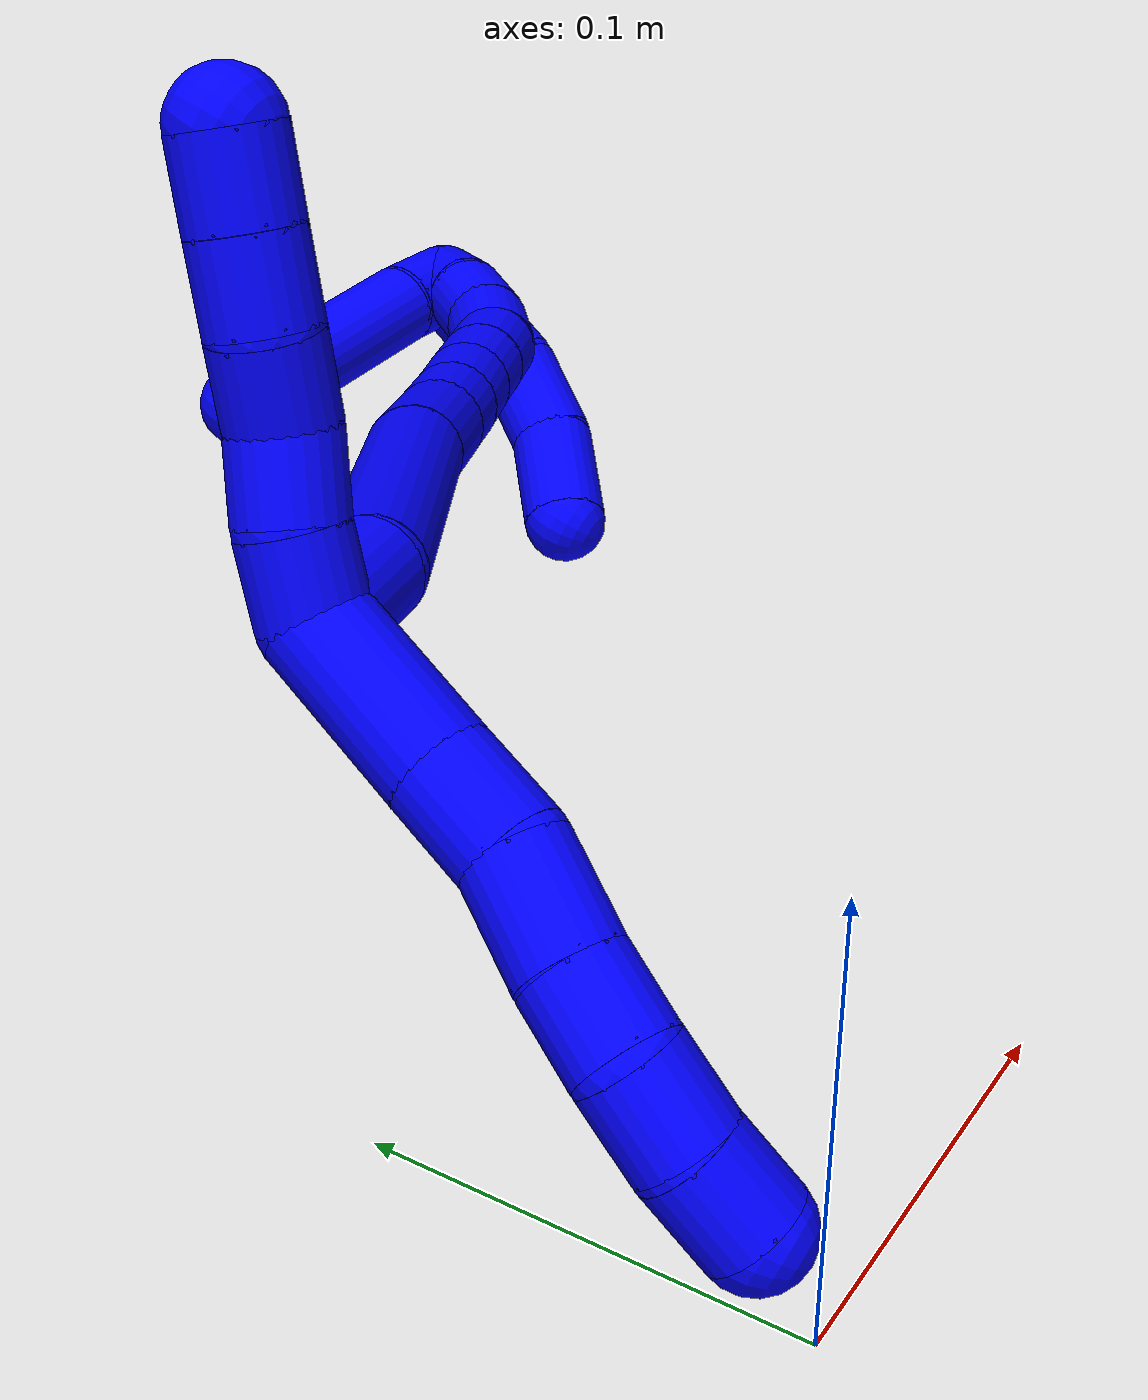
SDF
<sdf version="1.7">
 <world name="default">
  <model name="photoneo_s_sensor">
   <static>1</static>
   <pose>0 0 2 1.57079 1.57079 3.14159</pose>
   <link name="link">
    <inertial><mass>0.1</mass></inertial>
    <sensor name="sensor" type="depth">
     <update_rate>30</update_rate>
     <camera>
      <horizontal_fov>1.22</horizontal_fov>
      <image><width>1920</width><height>1200</height><format>B8G8R8</format></image>
      <clip><near>0.1</near><far>4</far></clip>
      <depth_camera><output>points</output></depth_camera>
     </camera>
     <plugin name="camera_plugin" filename="libgazebo_ros_depth_camera.so">
      <baseline>0.2</baseline>
      <alwaysOn>1</alwaysOn>
      <updateRate>0.0</updateRate>
      <cameraName>camera_ir</cameraName>
      <imageTopicName>/camera/color/image_raw</imageTopicName>
      <cameraInfoTopicName>/camera/color/camera_info</cameraInfoTopicName>
      <depthImageTopicName>/camera/depth/image_raw</depthImageTopicName>
      <depthImageCameraInfoTopicName>/camera/depth/camera_info</depthImageCameraInfoTopicName>
      <pointCloudTopicName>/camera/depth/points</pointCloudTopicName>
      <frameName>fr_optical</frameName>
      <pointCloudCutoff>0.1</pointCloudCutoff>
      <pointCloudCutoffMax>2.0</pointCloudCutoffMax>
      <distortionK1>0</distortionK1>
      <distortionK2>0</distortionK2>
      <distortionK3>0</distortionK3>
      <distortionT1>0</distortionT1>
      <distortionT2>0</distortionT2>
      <CxPrime>0</CxPrime>
      <Cx>0</Cx>
      <Cy>0</Cy>
      <focalLength>0</focalLength>
      <hackBaseline>0</hackBaseline>
     </plugin>
    </sensor>
   </link>
  </model>
  <model name="bin">
   <static>1</static>
   <link name="bottom">
    <collision name="collision-bottom">
     <pose>0 0 -0.01 0 -0 0</pose>
     <geometry><box><size>0.8 0.6 0.02</size></box></geometry>
     <surface>
      <friction><ode><mu>100</mu><mu2>100</mu2></ode></friction>
      <contact><collide_bitmask>65535</collide_bitmask></contact>
     </surface>
    </collision>
   </link>
   <link name="west_wall">
    <collision name="collision-west_wall">
     <pose>-0.41 0 0.1 0 -0 0</pose>
     <geometry><box><size>0.02 0.6 0.2</size></box></geometry>
     <surface>
      <friction><ode><mu>100</mu><mu2>100</mu2></ode></friction>
      <contact><collide_bitmask>65535</collide_bitmask></contact>
     </surface>
    </collision>
   </link>
   <link name="east_wall">
    <collision name="collision-east_wall">
     <pose>0.41 0 0.1 0 -0 0</pose>
     <geometry><box><size>0.02 0.6 0.2</size></box></geometry>
     <surface>
      <friction><ode><mu>100</mu><mu2>100</mu2></ode></friction>
      <contact><collide_bitmask>65535</collide_bitmask></contact>
     </surface>
    </collision>
   </link>
   <link name="south_wall">
    <collision name="collision-south_wall">
     <pose>0 -0.31 0.1 0 -0 0</pose>
     <geometry><box><size>0.8 0.02 0.2</size></box></geometry>
     <surface>
      <friction><ode><mu>100</mu><mu2>100</mu2></ode></friction>
      <contact><collide_bitmask>65535</collide_bitmask></contact>
     </surface>
    </collision>
   </link>
   <link name="north_wall">
    <collision name="collision-north_wall">
     <pose>0 0.31 0.1 0 -0 0</pose>
     <geometry><box><size>0.8 0.02 0.2</size></box></geometry>
     <surface>
      <friction><ode><mu>100</mu><mu2>100</mu2></ode></friction>
      <contact><collide_bitmask>65535</collide_bitmask></contact>
     </surface>
    </collision>
   </link>
  </model>
  <model name="1">
   <static>0</static>
   <link name="1">
    <collision name="collision-cylinder-e_1_2_8">
     <pose>0.004979 0.003196 0.01945 -0.16285 0.247431 -0.020295</pose>
     <geometry><cylinder><radius>0.0125</radius><length>0.04066</length></cylinder></geometry>
     <surface>
      <friction><ode><mu>1.16</mu><mu2>1.16</mu2><slip1>0</slip1><slip2>0</slip2></ode></friction>
      <contact><ode><kp>1e+06</kp><kd>1</kd><max_vel>0</max_vel><min_depth>0.001</min_depth></ode></contact>
     </surface>
    </collision>
    <visual name="visual-cylinder-e_1_2_8">
     <pose>0.004979 0.003196 0.01945 -0.16285 0.247431 -0.020295</pose>
     <geometry><cylinder><radius>0.0125</radius><length>0.04066</length></cylinder></geometry>
     <material><ambient>0 0 1 1</ambient></material>
    </visual>
    <collision name="collision-cylinder-e_2_8_9">
     <pose>0.01349 0.007165 0.050027 -0.069429 0.306677 -0.010735</pose>
     <geometry><cylinder><radius>0.0125</radius><length>0.023399</length></cylinder></geometry>
     <surface>
      <friction><ode><mu>1.16</mu><mu2>1.16</mu2><slip1>0</slip1><slip2>0</slip2></ode></friction>
      <contact><ode><kp>1e+06</kp><kd>1</kd><max_vel>0</max_vel><min_depth>0.001</min_depth></ode></contact>
     </surface>
    </collision>
    <visual name="visual-cylinder-e_2_8_9">
     <pose>0.01349 0.007165 0.050027 -0.069429 0.306677 -0.010735</pose>
     <geometry><cylinder><radius>0.0125</radius><length>0.023399</length></cylinder></geometry>
     <material><ambient>0 0 1 1</ambient></material>
    </visual>
    <collision name="collision-cylinder-e_3_9_10">
     <pose>0.022689 0.01115 0.072102 -0.285325 0.460967 -0.067385</pose>
     <geometry><cylinder><radius>0.0125</radius><length>0.025478</length></cylinder></geometry>
     <surface>
      <friction><ode><mu>1.16</mu><mu2>1.16</mu2><slip1>0</slip1><slip2>0</slip2></ode></friction>
      <contact><ode><kp>1e+06</kp><kd>1</kd><max_vel>0</max_vel><min_depth>0.001</min_depth></ode></contact>
     </surface>
    </collision>
    <visual name="visual-cylinder-e_3_9_10">
     <pose>0.022689 0.01115 0.072102 -0.285325 0.460967 -0.067385</pose>
     <geometry><cylinder><radius>0.0125</radius><length>0.025478</length></cylinder></geometry>
     <material><ambient>0 0 1 1</ambient></material>
    </visual>
    <collision name="collision-cylinder-e_4_10_11">
     <pose>0.032164 0.016566 0.092118 -0.238427 0.387477 -0.046993</pose>
     <geometry><cylinder><radius>0.0125</radius><length>0.020159</length></cylinder></geometry>
     <surface>
      <friction><ode><mu>1.16</mu><mu2>1.16</mu2><slip1>0</slip1><slip2>0</slip2></ode></friction>
      <contact><ode><kp>1e+06</kp><kd>1</kd><max_vel>0</max_vel><min_depth>0.001</min_depth></ode></contact>
     </surface>
    </collision>
    <visual name="visual-cylinder-e_4_10_11">
     <pose>0.032164 0.016566 0.092118 -0.238427 0.387477 -0.046993</pose>
     <geometry><cylinder><radius>0.0125</radius><length>0.020159</length></cylinder></geometry>
     <material><ambient>0 0 1 1</ambient></material>
    </visual>
    <collision name="collision-cylinder-e_5_11_12">
     <pose>0.037407 0.023148 0.110127 -0.455324 0.143132 -0.033214</pose>
     <geometry><cylinder><radius>0.0125</radius><length>0.020116</length></cylinder></geometry>
     <surface>
      <friction><ode><mu>1.16</mu><mu2>1.16</mu2><slip1>0</slip1><slip2>0</slip2></ode></friction>
      <contact><ode><kp>1e+06</kp><kd>1</kd><max_vel>0</max_vel><min_depth>0.001</min_depth></ode></contact>
     </surface>
    </collision>
    <visual name="visual-cylinder-e_5_11_12">
     <pose>0.037407 0.023148 0.110127 -0.455324 0.143132 -0.033214</pose>
     <geometry><cylinder><radius>0.0125</radius><length>0.020116</length></cylinder></geometry>
     <material><ambient>0 0 1 1</ambient></material>
    </visual>
    <collision name="collision-cylinder-e_6_12_6">
     <pose>0.038735 0.031951 0.12814 -0.453885 -0.010524 0.00243</pose>
     <geometry><cylinder><radius>0.0125</radius><length>0.020188</length></cylinder></geometry>
     <surface>
      <friction><ode><mu>1.16</mu><mu2>1.16</mu2><slip1>0</slip1><slip2>0</slip2></ode></friction>
      <contact><ode><kp>1e+06</kp><kd>1</kd><max_vel>0</max_vel><min_depth>0.001</min_depth></ode></contact>
     </surface>
    </collision>
    <visual name="visual-cylinder-e_6_12_6">
     <pose>0.038735 0.031951 0.12814 -0.453885 -0.010524 0.00243</pose>
     <geometry><cylinder><radius>0.0125</radius><length>0.020188</length></cylinder></geometry>
     <material><ambient>0 0 1 1</ambient></material>
    </visual>
    <collision name="collision-cylinder-e_1_2_13">
     <pose>-0.001993 -0.007693 -0.00607 2.23887 -0.200604 -0.409418</pose>
     <geometry><cylinder><radius>0.0125</radius><length>0.02</length></cylinder></geometry>
     <surface>
      <friction><ode><mu>1.16</mu><mu2>1.16</mu2><slip1>0</slip1><slip2>0</slip2></ode></friction>
      <contact><ode><kp>1e+06</kp><kd>1</kd><max_vel>0</max_vel><min_depth>0.001</min_depth></ode></contact>
     </surface>
    </collision>
    <visual name="visual-cylinder-e_1_2_13">
     <pose>-0.001993 -0.007693 -0.00607 2.23887 -0.200604 -0.409418</pose>
     <geometry><cylinder><radius>0.0125</radius><length>0.02</length></cylinder></geometry>
     <material><ambient>0 0 1 1</ambient></material>
    </visual>
    <collision name="collision-cylinder-e_2_13_14">
     <pose>-0.007785 -0.022881 -0.017561 2.19682 -0.389731 -0.737218</pose>
     <geometry><cylinder><radius>0.0125</radius><length>0.02</length></cylinder></geometry>
     <surface>
      <friction><ode><mu>1.16</mu><mu2>1.16</mu2><slip1>0</slip1><slip2>0</slip2></ode></friction>
      <contact><ode><kp>1e+06</kp><kd>1</kd><max_vel>0</max_vel><min_depth>0.001</min_depth></ode></contact>
     </surface>
    </collision>
    <visual name="visual-cylinder-e_2_13_14">
     <pose>-0.007785 -0.022881 -0.017561 2.19682 -0.389731 -0.737218</pose>
     <geometry><cylinder><radius>0.0125</radius><length>0.02</length></cylinder></geometry>
     <material><ambient>0 0 1 1</ambient></material>
    </visual>
    <collision name="collision-cylinder-e_3_14_15">
     <pose>-0.012265 -0.039134 -0.027762 2.07054 -0.068178 -0.114818</pose>
     <geometry><cylinder><radius>0.0125</radius><length>0.02</length></cylinder></geometry>
     <surface>
      <friction><ode><mu>1.16</mu><mu2>1.16</mu2><slip1>0</slip1><slip2>0</slip2></ode></friction>
      <contact><ode><kp>1e+06</kp><kd>1</kd><max_vel>0</max_vel><min_depth>0.001</min_depth></ode></contact>
     </surface>
    </collision>
    <visual name="visual-cylinder-e_3_14_15">
     <pose>-0.012265 -0.039134 -0.027762 2.07054 -0.068178 -0.114818</pose>
     <geometry><cylinder><radius>0.0125</radius><length>0.02</length></cylinder></geometry>
     <material><ambient>0 0 1 1</ambient></material>
    </visual>
    <collision name="collision-cylinder-e_4_15_16">
     <pose>-0.01492 -0.055975 -0.038088 2.17204 -0.198694 -0.374071</pose>
     <geometry><cylinder><radius>0.0125</radius><length>0.02</length></cylinder></geometry>
     <surface>
      <friction><ode><mu>1.16</mu><mu2>1.16</mu2><slip1>0</slip1><slip2>0</slip2></ode></friction>
      <contact><ode><kp>1e+06</kp><kd>1</kd><max_vel>0</max_vel><min_depth>0.001</min_depth></ode></contact>
     </surface>
    </collision>
    <visual name="visual-cylinder-e_4_15_16">
     <pose>-0.01492 -0.055975 -0.038088 2.17204 -0.198694 -0.374071</pose>
     <geometry><cylinder><radius>0.0125</radius><length>0.02</length></cylinder></geometry>
     <material><ambient>0 0 1 1</ambient></material>
    </visual>
    <collision name="collision-cylinder-e_5_16_5">
     <pose>-0.018975 -0.072118 -0.049176 2.17325 -0.20963 -0.394846</pose>
     <geometry><cylinder><radius>0.0125</radius><length>0.02</length></cylinder></geometry>
     <surface>
      <friction><ode><mu>1.16</mu><mu2>1.16</mu2><slip1>0</slip1><slip2>0</slip2></ode></friction>
      <contact><ode><kp>1e+06</kp><kd>1</kd><max_vel>0</max_vel><min_depth>0.001</min_depth></ode></contact>
     </surface>
    </collision>
    <visual name="visual-cylinder-e_5_16_5">
     <pose>-0.018975 -0.072118 -0.049176 2.17325 -0.20963 -0.394846</pose>
     <geometry><cylinder><radius>0.0125</radius><length>0.02</length></cylinder></geometry>
     <material><ambient>0 0 1 1</ambient></material>
    </visual>
    <collision name="collision-cylinder-e_1_2_17">
     <pose>-0.014134 0.002833 -0.001532 -2.0665 -1.34678 1.85819</pose>
     <geometry><cylinder><radius>0.0125</radius><length>0.028992</length></cylinder></geometry>
     <surface>
      <friction><ode><mu>1.16</mu><mu2>1.16</mu2><slip1>0</slip1><slip2>0</slip2></ode></friction>
      <contact><ode><kp>1e+06</kp><kd>1</kd><max_vel>0</max_vel><min_depth>0.001</min_depth></ode></contact>
     </surface>
    </collision>
    <visual name="visual-cylinder-e_1_2_17">
     <pose>-0.014134 0.002833 -0.001532 -2.0665 -1.34678 1.85819</pose>
     <geometry><cylinder><radius>0.0125</radius><length>0.028992</length></cylinder></geometry>
     <material><ambient>0 0 1 1</ambient></material>
    </visual>
    <collision name="collision-cylinder-e_2_17_18">
     <pose>-0.067644 0.021349 -0.01835 -2.34336 -1.06322 1.89729</pose>
     <geometry><cylinder><radius>0.0125</radius><length>0.090114</length></cylinder></geometry>
     <surface>
      <friction><ode><mu>1.16</mu><mu2>1.16</mu2><slip1>0</slip1><slip2>0</slip2></ode></friction>
      <contact><ode><kp>1e+06</kp><kd>1</kd><max_vel>0</max_vel><min_depth>0.001</min_depth></ode></contact>
     </surface>
    </collision>
    <visual name="visual-cylinder-e_2_17_18">
     <pose>-0.067644 0.021349 -0.01835 -2.34336 -1.06322 1.89729</pose>
     <geometry><cylinder><radius>0.0125</radius><length>0.090114</length></cylinder></geometry>
     <material><ambient>0 0 1 1</ambient></material>
    </visual>
    <collision name="collision-cylinder-e_3_18_19">
     <pose>-0.123533 0.044382 -0.038314 -2.13767 -1.0853 1.66481</pose>
     <geometry><cylinder><radius>0.0125</radius><length>0.03734</length></cylinder></geometry>
     <surface>
      <friction><ode><mu>1.16</mu><mu2>1.16</mu2><slip1>0</slip1><slip2>0</slip2></ode></friction>
      <contact><ode><kp>1e+06</kp><kd>1</kd><max_vel>0</max_vel><min_depth>0.001</min_depth></ode></contact>
     </surface>
    </collision>
    <visual name="visual-cylinder-e_3_18_19">
     <pose>-0.123533 0.044382 -0.038314 -2.13767 -1.0853 1.66481</pose>
     <geometry><cylinder><radius>0.0125</radius><length>0.03734</length></cylinder></geometry>
     <material><ambient>0 0 1 1</ambient></material>
    </visual>
    <collision name="collision-cylinder-e_4_19_20">
     <pose>-0.150001 0.055262 -0.045617 -2.2101 -1.15476 1.82726</pose>
     <geometry><cylinder><radius>0.0125</radius><length>0.021768</length></cylinder></geometry>
     <surface>
      <friction><ode><mu>1.16</mu><mu2>1.16</mu2><slip1>0</slip1><slip2>0</slip2></ode></friction>
      <contact><ode><kp>1e+06</kp><kd>1</kd><max_vel>0</max_vel><min_depth>0.001</min_depth></ode></contact>
     </surface>
    </collision>
    <visual name="visual-cylinder-e_4_19_20">
     <pose>-0.150001 0.055262 -0.045617 -2.2101 -1.15476 1.82726</pose>
     <geometry><cylinder><radius>0.0125</radius><length>0.021768</length></cylinder></geometry>
     <material><ambient>0 0 1 1</ambient></material>
    </visual>
    <collision name="collision-cylinder-e_5_20_21">
     <pose>-0.169843 0.061904 -0.051015 -2.29868 -1.17173 1.95326</pose>
     <geometry><cylinder><radius>0.0125</radius><length>0.021457</length></cylinder></geometry>
     <surface>
      <friction><ode><mu>1.16</mu><mu2>1.16</mu2><slip1>0</slip1><slip2>0</slip2></ode></friction>
      <contact><ode><kp>1e+06</kp><kd>1</kd><max_vel>0</max_vel><min_depth>0.001</min_depth></ode></contact>
     </surface>
    </collision>
    <visual name="visual-cylinder-e_5_20_21">
     <pose>-0.169843 0.061904 -0.051015 -2.29868 -1.17173 1.95326</pose>
     <geometry><cylinder><radius>0.0125</radius><length>0.021457</length></cylinder></geometry>
     <material><ambient>0 0 1 1</ambient></material>
    </visual>
    <collision name="collision-cylinder-e_6_21_22">
     <pose>-0.189166 0.067646 -0.056231 -2.31932 -1.20744 2.01405</pose>
     <geometry><cylinder><radius>0.0125</radius><length>0.020195</length></cylinder></geometry>
     <surface>
      <friction><ode><mu>1.16</mu><mu2>1.16</mu2><slip1>0</slip1><slip2>0</slip2></ode></friction>
      <contact><ode><kp>1e+06</kp><kd>1</kd><max_vel>0</max_vel><min_depth>0.001</min_depth></ode></contact>
     </surface>
    </collision>
    <visual name="visual-cylinder-e_6_21_22">
     <pose>-0.189166 0.067646 -0.056231 -2.31932 -1.20744 2.01405</pose>
     <geometry><cylinder><radius>0.0125</radius><length>0.020195</length></cylinder></geometry>
     <material><ambient>0 0 1 1</ambient></material>
    </visual>
    <collision name="collision-cylinder-e_7_22_23">
     <pose>-0.207927 0.073012 -0.061183 -2.31284 -1.19173 1.99073</pose>
     <geometry><cylinder><radius>0.0125</radius><length>0.02007</length></cylinder></geometry>
     <surface>
      <friction><ode><mu>1.16</mu><mu2>1.16</mu2><slip1>0</slip1><slip2>0</slip2></ode></friction>
      <contact><ode><kp>1e+06</kp><kd>1</kd><max_vel>0</max_vel><min_depth>0.001</min_depth></ode></contact>
     </surface>
    </collision>
    <visual name="visual-cylinder-e_7_22_23">
     <pose>-0.207927 0.073012 -0.061183 -2.31284 -1.19173 1.99073</pose>
     <geometry><cylinder><radius>0.0125</radius><length>0.02007</length></cylinder></geometry>
     <material><ambient>0 0 1 1</ambient></material>
    </visual>
    <collision name="collision-cylinder-e_8_23_24">
     <pose>-0.225297 0.078163 -0.06915 -2.72527 -0.932679 2.347</pose>
     <geometry><cylinder><radius>0.0125</radius><length>0.020037</length></cylinder></geometry>
     <surface>
      <friction><ode><mu>1.16</mu><mu2>1.16</mu2><slip1>0</slip1><slip2>0</slip2></ode></friction>
      <contact><ode><kp>1e+06</kp><kd>1</kd><max_vel>0</max_vel><min_depth>0.001</min_depth></ode></contact>
     </surface>
    </collision>
    <visual name="visual-cylinder-e_8_23_24">
     <pose>-0.225297 0.078163 -0.06915 -2.72527 -0.932679 2.347</pose>
     <geometry><cylinder><radius>0.0125</radius><length>0.020037</length></cylinder></geometry>
     <material><ambient>0 0 1 1</ambient></material>
    </visual>
    <collision name="collision-cylinder-e_9_24_25">
     <pose>-0.239894 0.08301 -0.081774 -2.81418 -0.71336 2.30705</pose>
     <geometry><cylinder><radius>0.0125</radius><length>0.020016</length></cylinder></geometry>
     <surface>
      <friction><ode><mu>1.16</mu><mu2>1.16</mu2><slip1>0</slip1><slip2>0</slip2></ode></friction>
      <contact><ode><kp>1e+06</kp><kd>1</kd><max_vel>0</max_vel><min_depth>0.001</min_depth></ode></contact>
     </surface>
    </collision>
    <visual name="visual-cylinder-e_9_24_25">
     <pose>-0.239894 0.08301 -0.081774 -2.81418 -0.71336 2.30705</pose>
     <geometry><cylinder><radius>0.0125</radius><length>0.020016</length></cylinder></geometry>
     <material><ambient>0 0 1 1</ambient></material>
    </visual>
    <collision name="collision-cylinder-e_10_25_1">
     <pose>-0.252439 0.089606 -0.095782 -2.59508 -0.642686 1.742</pose>
     <geometry><cylinder><radius>0.0125</radius><length>0.02001</length></cylinder></geometry>
     <surface>
      <friction><ode><mu>1.16</mu><mu2>1.16</mu2><slip1>0</slip1><slip2>0</slip2></ode></friction>
      <contact><ode><kp>1e+06</kp><kd>1</kd><max_vel>0</max_vel><min_depth>0.001</min_depth></ode></contact>
     </surface>
    </collision>
    <visual name="visual-cylinder-e_10_25_1">
     <pose>-0.252439 0.089606 -0.095782 -2.59508 -0.642686 1.742</pose>
     <geometry><cylinder><radius>0.0125</radius><length>0.02001</length></cylinder></geometry>
     <material><ambient>0 0 1 1</ambient></material>
    </visual>
    <collision name="collision-cylinder-e_1_1_26">
     <pose>-0.252295 0.096469 -0.083881 -0.143091 0.313564 -0.022657</pose>
     <geometry><cylinder><radius>0.0125</radius><length>0.039816</length></cylinder></geometry>
     <surface>
      <friction><ode><mu>1.16</mu><mu2>1.16</mu2><slip1>0</slip1><slip2>0</slip2></ode></friction>
      <contact><ode><kp>1e+06</kp><kd>1</kd><max_vel>0</max_vel><min_depth>0.001</min_depth></ode></contact>
     </surface>
    </collision>
    <visual name="visual-cylinder-e_1_1_26">
     <pose>-0.252295 0.096469 -0.083881 -0.143091 0.313564 -0.022657</pose>
     <geometry><cylinder><radius>0.0125</radius><length>0.039816</length></cylinder></geometry>
     <material><ambient>0 0 1 1</ambient></material>
    </visual>
    <collision name="collision-cylinder-e_2_26_27">
     <pose>-0.239252 0.102961 -0.053225 -0.30817 0.504486 -0.080017</pose>
     <geometry><cylinder><radius>0.0125</radius><length>0.02856</length></cylinder></geometry>
     <surface>
      <friction><ode><mu>1.16</mu><mu2>1.16</mu2><slip1>0</slip1><slip2>0</slip2></ode></friction>
      <contact><ode><kp>1e+06</kp><kd>1</kd><max_vel>0</max_vel><min_depth>0.001</min_depth></ode></contact>
     </surface>
    </collision>
    <visual name="visual-cylinder-e_2_26_27">
     <pose>-0.239252 0.102961 -0.053225 -0.30817 0.504486 -0.080017</pose>
     <geometry><cylinder><radius>0.0125</radius><length>0.02856</length></cylinder></geometry>
     <material><ambient>0 0 1 1</ambient></material>
    </visual>
    <collision name="collision-cylinder-e_3_27_4">
     <pose>-0.2209 0.110538 -0.031085 -0.354429 0.80972 -0.153195</pose>
     <geometry><cylinder><radius>0.0125</radius><length>0.031625</length></cylinder></geometry>
     <surface>
      <friction><ode><mu>1.16</mu><mu2>1.16</mu2><slip1>0</slip1><slip2>0</slip2></ode></friction>
      <contact><ode><kp>1e+06</kp><kd>1</kd><max_vel>0</max_vel><min_depth>0.001</min_depth></ode></contact>
     </surface>
    </collision>
    <visual name="visual-cylinder-e_3_27_4">
     <pose>-0.2209 0.110538 -0.031085 -0.354429 0.80972 -0.153195</pose>
     <geometry><cylinder><radius>0.0125</radius><length>0.031625</length></cylinder></geometry>
     <material><ambient>0 0 1 1</ambient></material>
    </visual>
    <collision name="collision-cylinder-e_1_1_28">
     <pose>-0.247324 0.093589 -0.104082 3.01939 1.43942 3.00224</pose>
     <geometry><cylinder><radius>0.0125</radius><length>0.022417</length></cylinder></geometry>
     <surface>
      <friction><ode><mu>1.16</mu><mu2>1.16</mu2><slip1>0</slip1><slip2>0</slip2></ode></friction>
      <contact><ode><kp>1e+06</kp><kd>1</kd><max_vel>0</max_vel><min_depth>0.001</min_depth></ode></contact>
     </surface>
    </collision>
    <visual name="visual-cylinder-e_1_1_28">
     <pose>-0.247324 0.093589 -0.104082 3.01939 1.43942 3.00224</pose>
     <geometry><cylinder><radius>0.0125</radius><length>0.022417</length></cylinder></geometry>
     <material><ambient>0 0 1 1</ambient></material>
    </visual>
    <collision name="collision-cylinder-e_2_28_29">
     <pose>-0.209051 0.096569 -0.10935 -2.44953 1.39052 -2.3257</pose>
     <geometry><cylinder><radius>0.0125</radius><length>0.055217</length></cylinder></geometry>
     <surface>
      <friction><ode><mu>1.16</mu><mu2>1.16</mu2><slip1>0</slip1><slip2>0</slip2></ode></friction>
      <contact><ode><kp>1e+06</kp><kd>1</kd><max_vel>0</max_vel><min_depth>0.001</min_depth></ode></contact>
     </surface>
    </collision>
    <visual name="visual-cylinder-e_2_28_29">
     <pose>-0.209051 0.096569 -0.10935 -2.44953 1.39052 -2.3257</pose>
     <geometry><cylinder><radius>0.0125</radius><length>0.055217</length></cylinder></geometry>
     <material><ambient>0 0 1 1</ambient></material>
    </visual>
    <collision name="collision-cylinder-e_3_29_3">
     <pose>-0.17073 0.099125 -0.11275 0.971108 1.50547 0.918148</pose>
     <geometry><cylinder><radius>0.0125</radius><length>0.022367</length></cylinder></geometry>
     <surface>
      <friction><ode><mu>1.16</mu><mu2>1.16</mu2><slip1>0</slip1><slip2>0</slip2></ode></friction>
      <contact><ode><kp>1e+06</kp><kd>1</kd><max_vel>0</max_vel><min_depth>0.001</min_depth></ode></contact>
     </surface>
    </collision>
    <visual name="visual-cylinder-e_3_29_3">
     <pose>-0.17073 0.099125 -0.11275 0.971108 1.50547 0.918148</pose>
     <geometry><cylinder><radius>0.0125</radius><length>0.022367</length></cylinder></geometry>
     <material><ambient>0 0 1 1</ambient></material>
    </visual>
    <collision name="collision-sphere-3">
     <pose>-0.159571 0.098523 -0.112338 0 -0 0</pose>
     <geometry><sphere><radius>0.0125</radius></sphere></geometry>
     <surface>
      <friction><ode><mu>1.16</mu><mu2>1.16</mu2><slip1>0</slip1><slip2>0</slip2></ode></friction>
      <contact><ode><kp>1e+06</kp><kd>1</kd><max_vel>0</max_vel><min_depth>0.001</min_depth></ode></contact>
     </surface>
    </collision>
    <visual name="visual-sphere-3">
     <pose>-0.159571 0.098523 -0.112338 0 -0 0</pose>
     <geometry><sphere><radius>0.0125</radius></sphere></geometry>
     <material><ambient>0 0 1 1</ambient></material>
    </visual>
    <collision name="collision-sphere-29">
     <pose>-0.18189 0.099728 -0.113162 0 -0 0</pose>
     <geometry><sphere><radius>0.0125</radius></sphere></geometry>
     <surface>
      <friction><ode><mu>1.16</mu><mu2>1.16</mu2><slip1>0</slip1><slip2>0</slip2></ode></friction>
      <contact><ode><kp>1e+06</kp><kd>1</kd><max_vel>0</max_vel><min_depth>0.001</min_depth></ode></contact>
     </surface>
    </collision>
    <visual name="visual-sphere-29">
     <pose>-0.18189 0.099728 -0.113162 0 -0 0</pose>
     <geometry><sphere><radius>0.0125</radius></sphere></geometry>
     <material><ambient>0 0 1 1</ambient></material>
    </visual>
    <collision name="collision-sphere-28">
     <pose>-0.236212 0.09341 -0.105539 0 -0 0</pose>
     <geometry><sphere><radius>0.0125</radius></sphere></geometry>
     <surface>
      <friction><ode><mu>1.16</mu><mu2>1.16</mu2><slip1>0</slip1><slip2>0</slip2></ode></friction>
      <contact><ode><kp>1e+06</kp><kd>1</kd><max_vel>0</max_vel><min_depth>0.001</min_depth></ode></contact>
     </surface>
    </collision>
    <visual name="visual-sphere-28">
     <pose>-0.236212 0.09341 -0.105539 0 -0 0</pose>
     <geometry><sphere><radius>0.0125</radius></sphere></geometry>
     <material><ambient>0 0 1 1</ambient></material>
    </visual>
    <collision name="collision-sphere-4">
     <pose>-0.20945 0.114322 -0.020857 0 -0 0</pose>
     <geometry><sphere><radius>0.0125</radius></sphere></geometry>
     <surface>
      <friction><ode><mu>1.16</mu><mu2>1.16</mu2><slip1>0</slip1><slip2>0</slip2></ode></friction>
      <contact><ode><kp>1e+06</kp><kd>1</kd><max_vel>0</max_vel><min_depth>0.001</min_depth></ode></contact>
     </surface>
    </collision>
    <visual name="visual-sphere-4">
     <pose>-0.20945 0.114322 -0.020857 0 -0 0</pose>
     <geometry><sphere><radius>0.0125</radius></sphere></geometry>
     <material><ambient>0 0 1 1</ambient></material>
    </visual>
    <collision name="collision-sphere-27">
     <pose>-0.23235 0.106753 -0.041313 0 -0 0</pose>
     <geometry><sphere><radius>0.0125</radius></sphere></geometry>
     <surface>
      <friction><ode><mu>1.16</mu><mu2>1.16</mu2><slip1>0</slip1><slip2>0</slip2></ode></friction>
      <contact><ode><kp>1e+06</kp><kd>1</kd><max_vel>0</max_vel><min_depth>0.001</min_depth></ode></contact>
     </surface>
    </collision>
    <visual name="visual-sphere-27">
     <pose>-0.23235 0.106753 -0.041313 0 -0 0</pose>
     <geometry><sphere><radius>0.0125</radius></sphere></geometry>
     <material><ambient>0 0 1 1</ambient></material>
    </visual>
    <collision name="collision-sphere-26">
     <pose>-0.246154 0.099169 -0.065137 0 -0 0</pose>
     <geometry><sphere><radius>0.0125</radius></sphere></geometry>
     <surface>
      <friction><ode><mu>1.16</mu><mu2>1.16</mu2><slip1>0</slip1><slip2>0</slip2></ode></friction>
      <contact><ode><kp>1e+06</kp><kd>1</kd><max_vel>0</max_vel><min_depth>0.001</min_depth></ode></contact>
     </surface>
    </collision>
    <visual name="visual-sphere-26">
     <pose>-0.246154 0.099169 -0.065137 0 -0 0</pose>
     <geometry><sphere><radius>0.0125</radius></sphere></geometry>
     <material><ambient>0 0 1 1</ambient></material>
    </visual>
    <collision name="collision-sphere-1">
     <pose>-0.258435 0.093768 -0.102624 0 -0 0</pose>
     <geometry><sphere><radius>0.0125</radius></sphere></geometry>
     <surface>
      <friction><ode><mu>1.16</mu><mu2>1.16</mu2><slip1>0</slip1><slip2>0</slip2></ode></friction>
      <contact><ode><kp>1e+06</kp><kd>1</kd><max_vel>0</max_vel><min_depth>0.001</min_depth></ode></contact>
     </surface>
    </collision>
    <visual name="visual-sphere-1">
     <pose>-0.258435 0.093768 -0.102624 0 -0 0</pose>
     <geometry><sphere><radius>0.0125</radius></sphere></geometry>
     <material><ambient>0 0 1 1</ambient></material>
    </visual>
    <collision name="collision-sphere-25">
     <pose>-0.246443 0.085444 -0.08894 0 -0 0</pose>
     <geometry><sphere><radius>0.0125</radius></sphere></geometry>
     <surface>
      <friction><ode><mu>1.16</mu><mu2>1.16</mu2><slip1>0</slip1><slip2>0</slip2></ode></friction>
      <contact><ode><kp>1e+06</kp><kd>1</kd><max_vel>0</max_vel><min_depth>0.001</min_depth></ode></contact>
     </surface>
    </collision>
    <visual name="visual-sphere-25">
     <pose>-0.246443 0.085444 -0.08894 0 -0 0</pose>
     <geometry><sphere><radius>0.0125</radius></sphere></geometry>
     <material><ambient>0 0 1 1</ambient></material>
    </visual>
    <collision name="collision-sphere-24">
     <pose>-0.233344 0.080576 -0.074609 0 -0 0</pose>
     <geometry><sphere><radius>0.0125</radius></sphere></geometry>
     <surface>
      <friction><ode><mu>1.16</mu><mu2>1.16</mu2><slip1>0</slip1><slip2>0</slip2></ode></friction>
      <contact><ode><kp>1e+06</kp><kd>1</kd><max_vel>0</max_vel><min_depth>0.001</min_depth></ode></contact>
     </surface>
    </collision>
    <visual name="visual-sphere-24">
     <pose>-0.233344 0.080576 -0.074609 0 -0 0</pose>
     <geometry><sphere><radius>0.0125</radius></sphere></geometry>
     <material><ambient>0 0 1 1</ambient></material>
    </visual>
    <collision name="collision-sphere-23">
     <pose>-0.21725 0.075749 -0.063692 0 -0 0</pose>
     <geometry><sphere><radius>0.0125</radius></sphere></geometry>
     <surface>
      <friction><ode><mu>1.16</mu><mu2>1.16</mu2><slip1>0</slip1><slip2>0</slip2></ode></friction>
      <contact><ode><kp>1e+06</kp><kd>1</kd><max_vel>0</max_vel><min_depth>0.001</min_depth></ode></contact>
     </surface>
    </collision>
    <visual name="visual-sphere-23">
     <pose>-0.21725 0.075749 -0.063692 0 -0 0</pose>
     <geometry><sphere><radius>0.0125</radius></sphere></geometry>
     <material><ambient>0 0 1 1</ambient></material>
    </visual>
    <collision name="collision-sphere-22">
     <pose>-0.198605 0.070275 -0.058673 0 -0 0</pose>
     <geometry><sphere><radius>0.0125</radius></sphere></geometry>
     <surface>
      <friction><ode><mu>1.16</mu><mu2>1.16</mu2><slip1>0</slip1><slip2>0</slip2></ode></friction>
      <contact><ode><kp>1e+06</kp><kd>1</kd><max_vel>0</max_vel><min_depth>0.001</min_depth></ode></contact>
     </surface>
    </collision>
    <visual name="visual-sphere-22">
     <pose>-0.198605 0.070275 -0.058673 0 -0 0</pose>
     <geometry><sphere><radius>0.0125</radius></sphere></geometry>
     <material><ambient>0 0 1 1</ambient></material>
    </visual>
    <collision name="collision-sphere-21">
     <pose>-0.179728 0.065016 -0.053788 0 -0 0</pose>
     <geometry><sphere><radius>0.0125</radius></sphere></geometry>
     <surface>
      <friction><ode><mu>1.16</mu><mu2>1.16</mu2><slip1>0</slip1><slip2>0</slip2></ode></friction>
      <contact><ode><kp>1e+06</kp><kd>1</kd><max_vel>0</max_vel><min_depth>0.001</min_depth></ode></contact>
     </surface>
    </collision>
    <visual name="visual-sphere-21">
     <pose>-0.179728 0.065016 -0.053788 0 -0 0</pose>
     <geometry><sphere><radius>0.0125</radius></sphere></geometry>
     <material><ambient>0 0 1 1</ambient></material>
    </visual>
    <collision name="collision-sphere-12">
     <pose>0.038842 0.027526 0.119068 0 -0 0</pose>
     <geometry><sphere><radius>0.0125</radius></sphere></geometry>
     <surface>
      <friction><ode><mu>1.16</mu><mu2>1.16</mu2><slip1>0</slip1><slip2>0</slip2></ode></friction>
      <contact><ode><kp>1e+06</kp><kd>1</kd><max_vel>0</max_vel><min_depth>0.001</min_depth></ode></contact>
     </surface>
    </collision>
    <visual name="visual-sphere-12">
     <pose>0.038842 0.027526 0.119068 0 -0 0</pose>
     <geometry><sphere><radius>0.0125</radius></sphere></geometry>
     <material><ambient>0 0 1 1</ambient></material>
    </visual>
    <collision name="collision-sphere-11">
     <pose>0.035972 0.01877 0.101186 0 -0 0</pose>
     <geometry><sphere><radius>0.0125</radius></sphere></geometry>
     <surface>
      <friction><ode><mu>1.16</mu><mu2>1.16</mu2><slip1>0</slip1><slip2>0</slip2></ode></friction>
      <contact><ode><kp>1e+06</kp><kd>1</kd><max_vel>0</max_vel><min_depth>0.001</min_depth></ode></contact>
     </surface>
    </collision>
    <visual name="visual-sphere-11">
     <pose>0.035972 0.01877 0.101186 0 -0 0</pose>
     <geometry><sphere><radius>0.0125</radius></sphere></geometry>
     <material><ambient>0 0 1 1</ambient></material>
    </visual>
    <collision name="collision-sphere-10">
     <pose>0.028355 0.014362 0.083049 0 -0 0</pose>
     <geometry><sphere><radius>0.0125</radius></sphere></geometry>
     <surface>
      <friction><ode><mu>1.16</mu><mu2>1.16</mu2><slip1>0</slip1><slip2>0</slip2></ode></friction>
      <contact><ode><kp>1e+06</kp><kd>1</kd><max_vel>0</max_vel><min_depth>0.001</min_depth></ode></contact>
     </surface>
    </collision>
    <visual name="visual-sphere-10">
     <pose>0.028355 0.014362 0.083049 0 -0 0</pose>
     <geometry><sphere><radius>0.0125</radius></sphere></geometry>
     <material><ambient>0 0 1 1</ambient></material>
    </visual>
    <collision name="collision-sphere-9">
     <pose>0.017022 0.007939 0.061154 0 -0 0</pose>
     <geometry><sphere><radius>0.0125</radius></sphere></geometry>
     <surface>
      <friction><ode><mu>1.16</mu><mu2>1.16</mu2><slip1>0</slip1><slip2>0</slip2></ode></friction>
      <contact><ode><kp>1e+06</kp><kd>1</kd><max_vel>0</max_vel><min_depth>0.001</min_depth></ode></contact>
     </surface>
    </collision>
    <visual name="visual-sphere-9">
     <pose>0.017022 0.007939 0.061154 0 -0 0</pose>
     <geometry><sphere><radius>0.0125</radius></sphere></geometry>
     <material><ambient>0 0 1 1</ambient></material>
    </visual>
    <collision name="collision-sphere-2">
     <geometry><sphere><radius>0.0125</radius></sphere></geometry>
     <surface>
      <friction><ode><mu>1.16</mu><mu2>1.16</mu2><slip1>0</slip1><slip2>0</slip2></ode></friction>
      <contact><ode><kp>1e+06</kp><kd>1</kd><max_vel>0</max_vel><min_depth>0.001</min_depth></ode></contact>
     </surface>
    </collision>
    <visual name="visual-sphere-2">
     <geometry><sphere><radius>0.0125</radius></sphere></geometry>
     <material><ambient>0 0 1 1</ambient></material>
    </visual>
    <collision name="collision-sphere-19">
     <pose>-0.140046 0.051732 -0.042993 0 -0 0</pose>
     <geometry><sphere><radius>0.0125</radius></sphere></geometry>
     <surface>
      <friction><ode><mu>1.16</mu><mu2>1.16</mu2><slip1>0</slip1><slip2>0</slip2></ode></friction>
      <contact><ode><kp>1e+06</kp><kd>1</kd><max_vel>0</max_vel><min_depth>0.001</min_depth></ode></contact>
     </surface>
    </collision>
    <visual name="visual-sphere-19">
     <pose>-0.140046 0.051732 -0.042993 0 -0 0</pose>
     <geometry><sphere><radius>0.0125</radius></sphere></geometry>
     <material><ambient>0 0 1 1</ambient></material>
    </visual>
    <collision name="collision-sphere-8">
     <pose>0.009958 0.006392 0.0389 0 -0 0</pose>
     <geometry><sphere><radius>0.0125</radius></sphere></geometry>
     <surface>
      <friction><ode><mu>1.16</mu><mu2>1.16</mu2><slip1>0</slip1><slip2>0</slip2></ode></friction>
      <contact><ode><kp>1e+06</kp><kd>1</kd><max_vel>0</max_vel><min_depth>0.001</min_depth></ode></contact>
     </surface>
    </collision>
    <visual name="visual-sphere-8">
     <pose>0.009958 0.006392 0.0389 0 -0 0</pose>
     <geometry><sphere><radius>0.0125</radius></sphere></geometry>
     <material><ambient>0 0 1 1</ambient></material>
    </visual>
    <collision name="collision-sphere-6">
     <pose>0.038629 0.036377 0.137211 0 -0 0</pose>
     <geometry><sphere><radius>0.0125</radius></sphere></geometry>
     <surface>
      <friction><ode><mu>1.16</mu><mu2>1.16</mu2><slip1>0</slip1><slip2>0</slip2></ode></friction>
      <contact><ode><kp>1e+06</kp><kd>1</kd><max_vel>0</max_vel><min_depth>0.001</min_depth></ode></contact>
     </surface>
    </collision>
    <visual name="visual-sphere-6">
     <pose>0.038629 0.036377 0.137211 0 -0 0</pose>
     <geometry><sphere><radius>0.0125</radius></sphere></geometry>
     <material><ambient>0 0 1 1</ambient></material>
    </visual>
    <collision name="collision-sphere-13">
     <pose>-0.003985 -0.015386 -0.012141 0 -0 0</pose>
     <geometry><sphere><radius>0.0125</radius></sphere></geometry>
     <surface>
      <friction><ode><mu>1.16</mu><mu2>1.16</mu2><slip1>0</slip1><slip2>0</slip2></ode></friction>
      <contact><ode><kp>1e+06</kp><kd>1</kd><max_vel>0</max_vel><min_depth>0.001</min_depth></ode></contact>
     </surface>
    </collision>
    <visual name="visual-sphere-13">
     <pose>-0.003985 -0.015386 -0.012141 0 -0 0</pose>
     <geometry><sphere><radius>0.0125</radius></sphere></geometry>
     <material><ambient>0 0 1 1</ambient></material>
    </visual>
    <collision name="collision-sphere-14">
     <pose>-0.011584 -0.030377 -0.022981 0 -0 0</pose>
     <geometry><sphere><radius>0.0125</radius></sphere></geometry>
     <surface>
      <friction><ode><mu>1.16</mu><mu2>1.16</mu2><slip1>0</slip1><slip2>0</slip2></ode></friction>
      <contact><ode><kp>1e+06</kp><kd>1</kd><max_vel>0</max_vel><min_depth>0.001</min_depth></ode></contact>
     </surface>
    </collision>
    <visual name="visual-sphere-14">
     <pose>-0.011584 -0.030377 -0.022981 0 -0 0</pose>
     <geometry><sphere><radius>0.0125</radius></sphere></geometry>
     <material><ambient>0 0 1 1</ambient></material>
    </visual>
    <collision name="collision-sphere-15">
     <pose>-0.012947 -0.047891 -0.032542 0 -0 0</pose>
     <geometry><sphere><radius>0.0125</radius></sphere></geometry>
     <surface>
      <friction><ode><mu>1.16</mu><mu2>1.16</mu2><slip1>0</slip1><slip2>0</slip2></ode></friction>
      <contact><ode><kp>1e+06</kp><kd>1</kd><max_vel>0</max_vel><min_depth>0.001</min_depth></ode></contact>
     </surface>
    </collision>
    <visual name="visual-sphere-15">
     <pose>-0.012947 -0.047891 -0.032542 0 -0 0</pose>
     <geometry><sphere><radius>0.0125</radius></sphere></geometry>
     <material><ambient>0 0 1 1</ambient></material>
    </visual>
    <collision name="collision-sphere-16">
     <pose>-0.016894 -0.064059 -0.043633 0 -0 0</pose>
     <geometry><sphere><radius>0.0125</radius></sphere></geometry>
     <surface>
      <friction><ode><mu>1.16</mu><mu2>1.16</mu2><slip1>0</slip1><slip2>0</slip2></ode></friction>
      <contact><ode><kp>1e+06</kp><kd>1</kd><max_vel>0</max_vel><min_depth>0.001</min_depth></ode></contact>
     </surface>
    </collision>
    <visual name="visual-sphere-16">
     <pose>-0.016894 -0.064059 -0.043633 0 -0 0</pose>
     <geometry><sphere><radius>0.0125</radius></sphere></geometry>
     <material><ambient>0 0 1 1</ambient></material>
    </visual>
    <collision name="collision-sphere-5">
     <pose>-0.021056 -0.080177 -0.054718 0 -0 0</pose>
     <geometry><sphere><radius>0.0125</radius></sphere></geometry>
     <surface>
      <friction><ode><mu>1.16</mu><mu2>1.16</mu2><slip1>0</slip1><slip2>0</slip2></ode></friction>
      <contact><ode><kp>1e+06</kp><kd>1</kd><max_vel>0</max_vel><min_depth>0.001</min_depth></ode></contact>
     </surface>
    </collision>
    <visual name="visual-sphere-5">
     <pose>-0.021056 -0.080177 -0.054718 0 -0 0</pose>
     <geometry><sphere><radius>0.0125</radius></sphere></geometry>
     <material><ambient>0 0 1 1</ambient></material>
    </visual>
    <collision name="collision-sphere-17">
     <pose>-0.028267 0.005665 -0.003063 0 -0 0</pose>
     <geometry><sphere><radius>0.0125</radius></sphere></geometry>
     <surface>
      <friction><ode><mu>1.16</mu><mu2>1.16</mu2><slip1>0</slip1><slip2>0</slip2></ode></friction>
      <contact><ode><kp>1e+06</kp><kd>1</kd><max_vel>0</max_vel><min_depth>0.001</min_depth></ode></contact>
     </surface>
    </collision>
    <visual name="visual-sphere-17">
     <pose>-0.028267 0.005665 -0.003063 0 -0 0</pose>
     <geometry><sphere><radius>0.0125</radius></sphere></geometry>
     <material><ambient>0 0 1 1</ambient></material>
    </visual>
    <collision name="collision-sphere-18">
     <pose>-0.10702 0.037032 -0.033636 0 -0 0</pose>
     <geometry><sphere><radius>0.0125</radius></sphere></geometry>
     <surface>
      <friction><ode><mu>1.16</mu><mu2>1.16</mu2><slip1>0</slip1><slip2>0</slip2></ode></friction>
      <contact><ode><kp>1e+06</kp><kd>1</kd><max_vel>0</max_vel><min_depth>0.001</min_depth></ode></contact>
     </surface>
    </collision>
    <visual name="visual-sphere-18">
     <pose>-0.10702 0.037032 -0.033636 0 -0 0</pose>
     <geometry><sphere><radius>0.0125</radius></sphere></geometry>
     <material><ambient>0 0 1 1</ambient></material>
    </visual>
    <collision name="collision-sphere-20">
     <pose>-0.159957 0.058792 -0.048241 0 -0 0</pose>
     <geometry><sphere><radius>0.0125</radius></sphere></geometry>
     <surface>
      <friction><ode><mu>1.16</mu><mu2>1.16</mu2><slip1>0</slip1><slip2>0</slip2></ode></friction>
      <contact><ode><kp>1e+06</kp><kd>1</kd><max_vel>0</max_vel><min_depth>0.001</min_depth></ode></contact>
     </surface>
    </collision>
    <visual name="visual-sphere-20">
     <pose>-0.159957 0.058792 -0.048241 0 -0 0</pose>
     <geometry><sphere><radius>0.0125</radius></sphere></geometry>
     <material><ambient>0 0 1 1</ambient></material>
    </visual>
    <inertial>
     <pose>-0.110664 0.042722 -0.02876 0 -0 0</pose>
     <mass>0.75</mass>
     <inertia><ixx>4.3e-05</ixx><ixy>0</ixy><ixz>0</ixz><iyy>0.000152</iyy><iyz>0</iyz><izz>1.8e-05</izz></inertia>
    </inertial>
   </link>
   <pose>0.035351 0.136485 0.094541 -1.92526 0.078315 -3.07783</pose>
  </model>
 </world>
</sdf>
